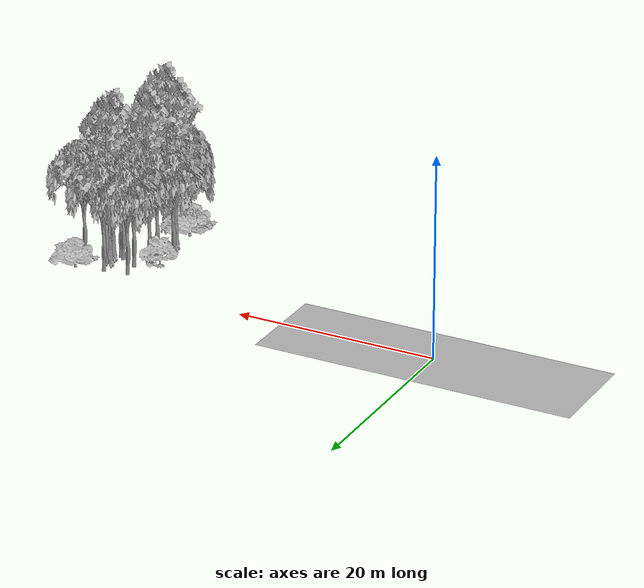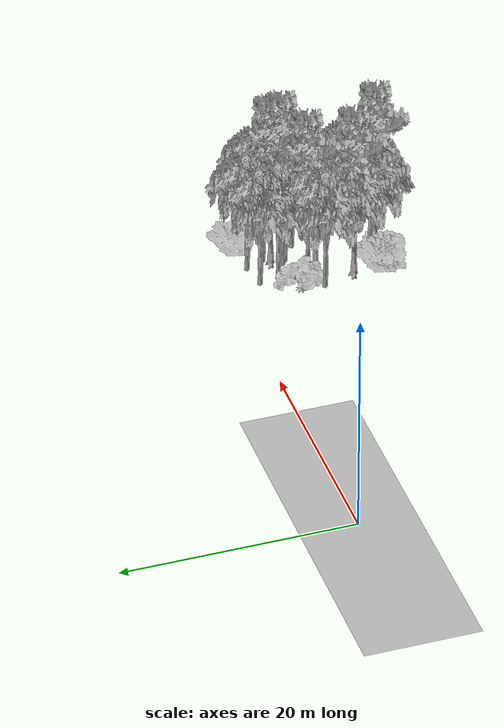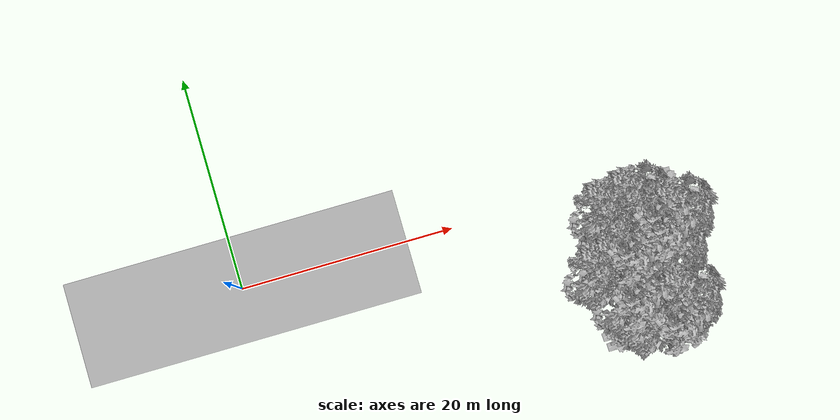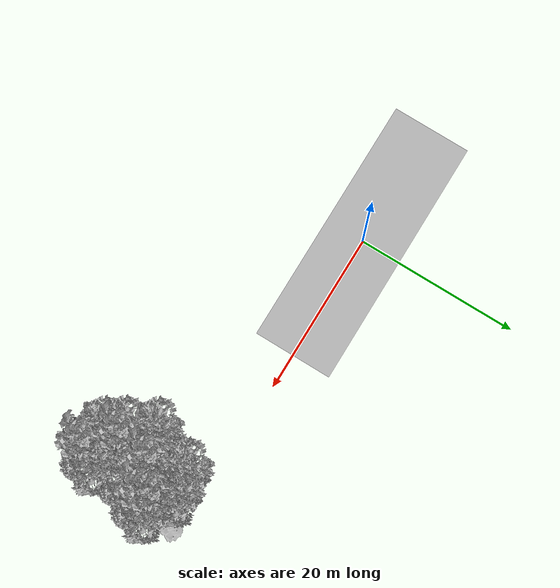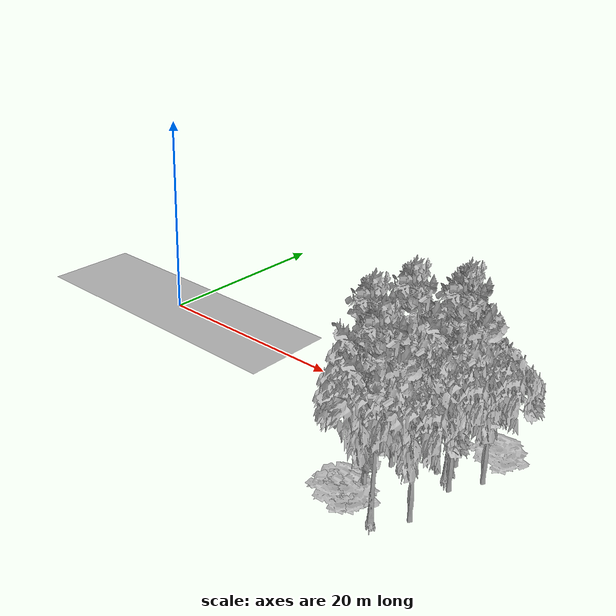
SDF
<sdf version="1.7">
 <world name="default">
  <model name="ground_plane">
   <static>1</static>
   <link name="link">
    <collision name="collision">
     <pose>-50 0 0 0 -0 0</pose>
     <geometry><plane><normal>0 0 1</normal><size>100 100</size></plane></geometry>
     <surface><contact><ode><min_depth>0.01</min_depth><max_vel>0</max_vel></ode></contact></surface>
    </collision>
    <visual name="grass">
     <cast_shadows>0</cast_shadows>
     <geometry>
      <mesh>
       <scale>0.5814285714285714 0.18142857142857144 0.1</scale>
       <uri>file://grass_plane/meshes/grass_plane.dae</uri>
      </mesh>
     </geometry>
    </visual>
   </link>
  </model>
  <model name="Tree 19">
   <static>1</static>
   <pose>33.62600393076522 -7.004336705707363 0 1.57079 -0 0</pose>
   <link name="link">
    <collision name="collision">
     <geometry><mesh><scale>3.5 5 3.5</scale><uri>model://tree_9/meshes/tree_9.obj</uri></mesh></geometry>
    </collision>
    <visual name="visual">
     <geometry><mesh><scale>3.5 5 3.5</scale><uri>model://tree_9/meshes/tree_9.obj</uri></mesh></geometry>
    </visual>
   </link>
  </model>
  <model name="Tree 23">
   <static>1</static>
   <pose>34.39486902254079 -12.86158856818378 0 1.57079 -0 0</pose>
   <link name="link">
    <collision name="collision">
     <geometry><mesh><scale>3.5 5 3.5</scale><uri>model://tree_2/meshes/tree_2.obj</uri></mesh></geometry>
    </collision>
    <visual name="visual">
     <geometry><mesh><scale>3.5 5 3.5</scale><uri>model://tree_2/meshes/tree_2.obj</uri></mesh></geometry>
    </visual>
   </link>
  </model>
  <model name="Tree 35">
   <static>1</static>
   <pose>31.405396391860805 -7.857443747950872 0 1.57079 -0 0</pose>
   <link name="link">
    <collision name="collision">
     <geometry><mesh><scale>3.5 5 3.5</scale><uri>model://tree_2/meshes/tree_2.obj</uri></mesh></geometry>
    </collision>
    <visual name="visual">
     <geometry><mesh><scale>3.5 5 3.5</scale><uri>model://tree_2/meshes/tree_2.obj</uri></mesh></geometry>
    </visual>
   </link>
  </model>
  <model name="Tree 37">
   <static>1</static>
   <pose>36.64212318438433 -4.657937957060248 0 1.57079 -0 0</pose>
   <link name="link">
    <collision name="collision">
     <geometry><mesh><scale>3.5 5 3.5</scale><uri>model://tree_9/meshes/tree_9.obj</uri></mesh></geometry>
    </collision>
    <visual name="visual">
     <geometry><mesh><scale>3.5 5 3.5</scale><uri>model://tree_9/meshes/tree_9.obj</uri></mesh></geometry>
    </visual>
   </link>
  </model>
  <model name="Tree 100">
   <static>1</static>
   <pose>32.92126758842166 -14.177158568320344 0 1.57079 -0 0</pose>
   <link name="link">
    <collision name="collision">
     <geometry><mesh><scale>3 2 3</scale><uri>model://tree_3/meshes/tree_3.obj</uri></mesh></geometry>
    </collision>
    <visual name="visual">
     <geometry><mesh><scale>3 2 3</scale><uri>model://tree_3/meshes/tree_3.obj</uri></mesh></geometry>
    </visual>
   </link>
  </model>
  <model name="Tree 127">
   <static>1</static>
   <pose>35.851955707786715 -13.800034921988157 0 1.57079 -0 0</pose>
   <link name="link">
    <collision name="collision">
     <geometry><mesh><scale>3.5 5 3.5</scale><uri>model://tree_9/meshes/tree_9.obj</uri></mesh></geometry>
    </collision>
    <visual name="visual">
     <geometry><mesh><scale>3.5 5 3.5</scale><uri>model://tree_9/meshes/tree_9.obj</uri></mesh></geometry>
    </visual>
   </link>
  </model>
  <model name="Tree 129">
   <static>1</static>
   <pose>39.159777083959455 -4.385282529500911 0 1.57079 -0 0</pose>
   <link name="link">
    <collision name="collision">
     <geometry><mesh><scale>3.5 5 3.5</scale><uri>model://tree_2/meshes/tree_2.obj</uri></mesh></geometry>
    </collision>
    <visual name="visual">
     <geometry><mesh><scale>3.5 5 3.5</scale><uri>model://tree_2/meshes/tree_2.obj</uri></mesh></geometry>
    </visual>
   </link>
  </model>
  <model name="Tree 130">
   <static>1</static>
   <pose>36.93012400340682 -5.823052980628722 0 1.57079 -0 0</pose>
   <link name="link">
    <collision name="collision">
     <geometry><mesh><scale>3.5 5 3.5</scale><uri>model://tree_9/meshes/tree_9.obj</uri></mesh></geometry>
    </collision>
    <visual name="visual">
     <geometry><mesh><scale>3.5 5 3.5</scale><uri>model://tree_9/meshes/tree_9.obj</uri></mesh></geometry>
    </visual>
   </link>
  </model>
  <model name="Tree 137">
   <static>1</static>
   <pose>36.55101579351347 -3.9822695007415234 0 1.57079 -0 0</pose>
   <link name="link">
    <collision name="collision">
     <geometry><mesh><scale>3.5 5 3.5</scale><uri>model://tree_2/meshes/tree_2.obj</uri></mesh></geometry>
    </collision>
    <visual name="visual">
     <geometry><mesh><scale>3.5 5 3.5</scale><uri>model://tree_2/meshes/tree_2.obj</uri></mesh></geometry>
    </visual>
   </link>
  </model>
  <model name="Tree 165">
   <static>1</static>
   <pose>33.455724609492876 -2.723419961007929 0 1.57079 -0 0</pose>
   <link name="link">
    <collision name="collision">
     <geometry><mesh><scale>3.5 5 3.5</scale><uri>model://tree_2/meshes/tree_2.obj</uri></mesh></geometry>
    </collision>
    <visual name="visual">
     <geometry><mesh><scale>3.5 5 3.5</scale><uri>model://tree_2/meshes/tree_2.obj</uri></mesh></geometry>
    </visual>
   </link>
  </model>
  <model name="Tree 189">
   <static>1</static>
   <pose>33.45565044689691 -13.681459773958041 0 1.57079 -0 0</pose>
   <link name="link">
    <collision name="collision">
     <geometry><mesh><scale>3 2 3</scale><uri>model://tree_3/meshes/tree_3.obj</uri></mesh></geometry>
    </collision>
    <visual name="visual">
     <geometry><mesh><scale>3 2 3</scale><uri>model://tree_3/meshes/tree_3.obj</uri></mesh></geometry>
    </visual>
   </link>
  </model>
  <model name="Tree 208">
   <static>1</static>
   <pose>35.97181465989905 -5.767276904783801 0 1.57079 -0 0</pose>
   <link name="link">
    <collision name="collision">
     <geometry><mesh><scale>3.5 5 3.5</scale><uri>model://tree_2/meshes/tree_2.obj</uri></mesh></geometry>
    </collision>
    <visual name="visual">
     <geometry><mesh><scale>3.5 5 3.5</scale><uri>model://tree_2/meshes/tree_2.obj</uri></mesh></geometry>
    </visual>
   </link>
  </model>
  <model name="Tree 223">
   <static>1</static>
   <pose>37.686575618409364 -11.803232134826397 0 1.57079 -0 0</pose>
   <link name="link">
    <collision name="collision">
     <geometry><mesh><scale>3.5 5 3.5</scale><uri>model://tree_2/meshes/tree_2.obj</uri></mesh></geometry>
    </collision>
    <visual name="visual">
     <geometry><mesh><scale>3.5 5 3.5</scale><uri>model://tree_2/meshes/tree_2.obj</uri></mesh></geometry>
    </visual>
   </link>
  </model>
  <model name="Tree 276">
   <static>1</static>
   <pose>31.83646883193674 -5.805104248327185 0 1.57079 -0 0</pose>
   <link name="link">
    <collision name="collision">
     <geometry><mesh><scale>4 2.5 4</scale><uri>model://tree_1/meshes/tree_1.obj</uri></mesh></geometry>
    </collision>
    <visual name="visual">
     <geometry><mesh><scale>4 2.5 4</scale><uri>model://tree_1/meshes/tree_1.obj</uri></mesh></geometry>
    </visual>
   </link>
  </model>
  <model name="Tree 280">
   <static>1</static>
   <pose>32.73869646549777 -13.190446071278664 0 1.57079 -0 0</pose>
   <link name="link">
    <collision name="collision">
     <geometry><mesh><scale>3 2 3</scale><uri>model://tree_3/meshes/tree_3.obj</uri></mesh></geometry>
    </collision>
    <visual name="visual">
     <geometry><mesh><scale>3 2 3</scale><uri>model://tree_3/meshes/tree_3.obj</uri></mesh></geometry>
    </visual>
   </link>
  </model>
  <model name="Tree 355">
   <static>1</static>
   <pose>33.163376139407774 -10.985910406347898 0 1.57079 -0 0</pose>
   <link name="link">
    <collision name="collision">
     <geometry><mesh><scale>3.5 5 3.5</scale><uri>model://tree_2/meshes/tree_2.obj</uri></mesh></geometry>
    </collision>
    <visual name="visual">
     <geometry><mesh><scale>3.5 5 3.5</scale><uri>model://tree_2/meshes/tree_2.obj</uri></mesh></geometry>
    </visual>
   </link>
  </model>
  <model name="Tree 394">
   <static>1</static>
   <pose>32.95291122642607 -7.4608092567552955 0 1.57079 -0 0</pose>
   <link name="link">
    <collision name="collision">
     <geometry><mesh><scale>3.5 5 3.5</scale><uri>model://tree_2/meshes/tree_2.obj</uri></mesh></geometry>
    </collision>
    <visual name="visual">
     <geometry><mesh><scale>3.5 5 3.5</scale><uri>model://tree_2/meshes/tree_2.obj</uri></mesh></geometry>
    </visual>
   </link>
  </model>
  <model name="Tree 403">
   <static>1</static>
   <pose>37.80912708736349 -6.961227349794697 0 1.57079 -0 0</pose>
   <link name="link">
    <collision name="collision">
     <geometry><mesh><scale>3.5 5 3.5</scale><uri>model://tree_2/meshes/tree_2.obj</uri></mesh></geometry>
    </collision>
    <visual name="visual">
     <geometry><mesh><scale>3.5 5 3.5</scale><uri>model://tree_2/meshes/tree_2.obj</uri></mesh></geometry>
    </visual>
   </link>
  </model>
  <model name="Tree 433">
   <static>1</static>
   <pose>33.7689136349792 -4.445321124408654 0 1.57079 -0 0</pose>
   <link name="link">
    <collision name="collision">
     <geometry><mesh><scale>3.5 5 3.5</scale><uri>model://tree_2/meshes/tree_2.obj</uri></mesh></geometry>
    </collision>
    <visual name="visual">
     <geometry><mesh><scale>3.5 5 3.5</scale><uri>model://tree_2/meshes/tree_2.obj</uri></mesh></geometry>
    </visual>
   </link>
  </model>
  <model name="Tree 453">
   <static>1</static>
   <pose>35.81702426497225 -2.3172989233369616 0 1.57079 -0 0</pose>
   <link name="link">
    <collision name="collision">
     <geometry><mesh><scale>3.5 5 3.5</scale><uri>model://tree_2/meshes/tree_2.obj</uri></mesh></geometry>
    </collision>
    <visual name="visual">
     <geometry><mesh><scale>3.5 5 3.5</scale><uri>model://tree_2/meshes/tree_2.obj</uri></mesh></geometry>
    </visual>
   </link>
  </model>
  <model name="Tree 460">
   <static>1</static>
   <pose>32.93770711678489 -10.893705438499572 0 1.57079 -0 0</pose>
   <link name="link">
    <collision name="collision">
     <geometry><mesh><scale>3.5 5 3.5</scale><uri>model://tree_9/meshes/tree_9.obj</uri></mesh></geometry>
    </collision>
    <visual name="visual">
     <geometry><mesh><scale>3.5 5 3.5</scale><uri>model://tree_9/meshes/tree_9.obj</uri></mesh></geometry>
    </visual>
   </link>
  </model>
  <model name="Tree 480">
   <static>1</static>
   <pose>35.53369338242227 -5.4368724979435505 0 1.57079 -0 0</pose>
   <link name="link">
    <collision name="collision">
     <geometry><mesh><scale>3.5 5 3.5</scale><uri>model://tree_2/meshes/tree_2.obj</uri></mesh></geometry>
    </collision>
    <visual name="visual">
     <geometry><mesh><scale>3.5 5 3.5</scale><uri>model://tree_2/meshes/tree_2.obj</uri></mesh></geometry>
    </visual>
   </link>
  </model>
  <model name="Tree 503">
   <static>1</static>
   <pose>38.90487463271461 -1.9991595833958904 0 1.57079 -0 0</pose>
   <link name="link">
    <collision name="collision">
     <geometry><mesh><scale>3 2 3</scale><uri>model://tree_3/meshes/tree_3.obj</uri></mesh></geometry>
    </collision>
    <visual name="visual">
     <geometry><mesh><scale>3 2 3</scale><uri>model://tree_3/meshes/tree_3.obj</uri></mesh></geometry>
    </visual>
   </link>
  </model>
 </world>
</sdf>
